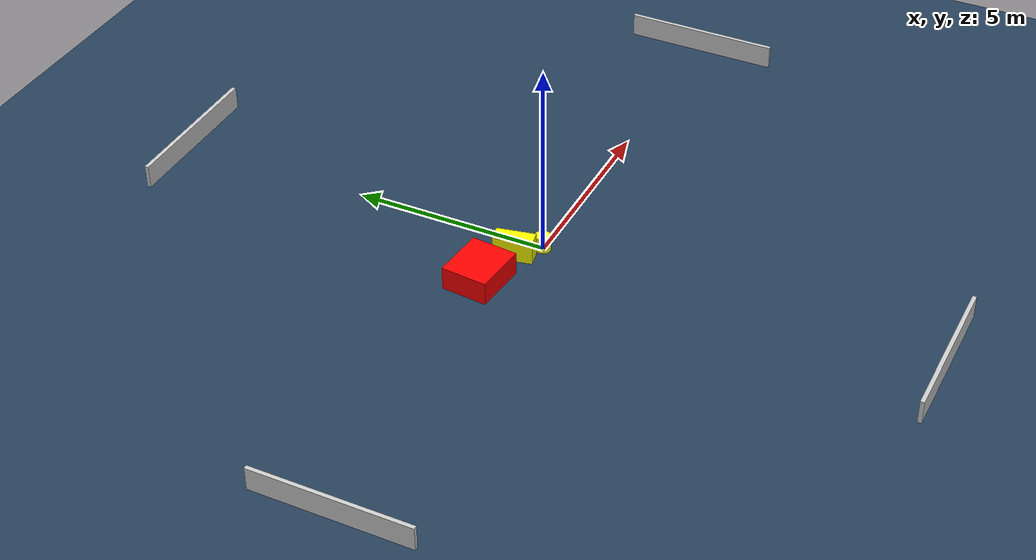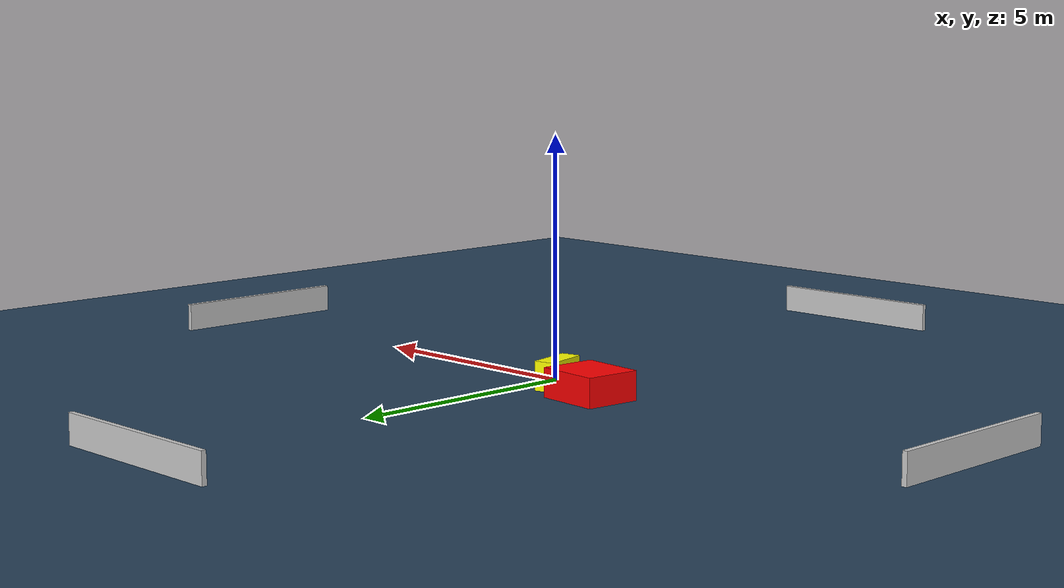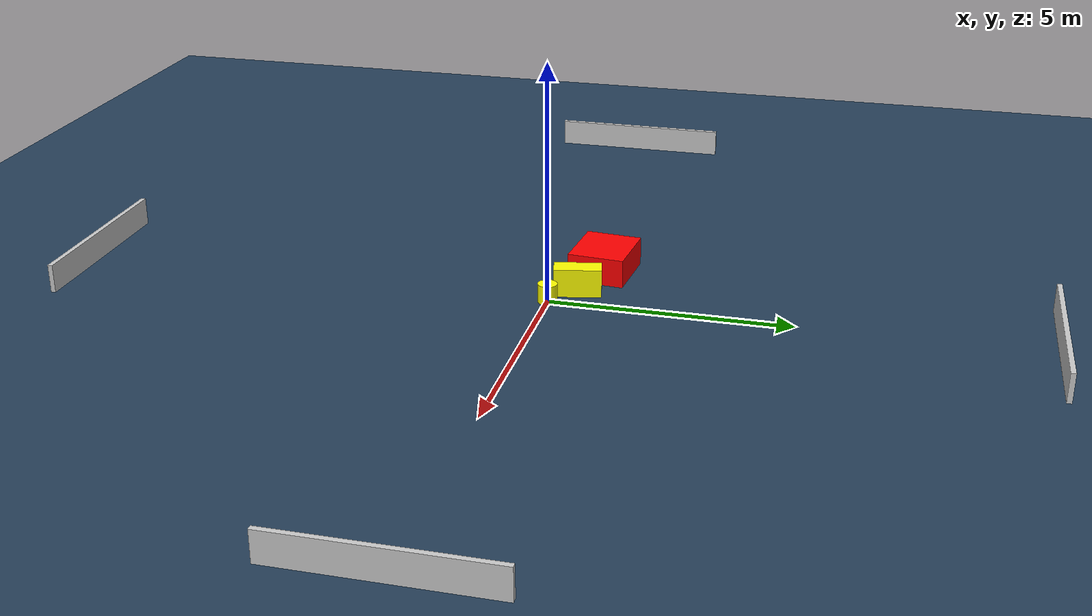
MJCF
<?xml version="1.0" ?>
<mujoco model="generated_environment">
  <option timestep="0.01" integrator="RK4" cone="elliptic"/>
  <default>
    <geom density="1"/>
  </default>
  <asset>
    <texture builtin="gradient" height="3072" name="skybox" rgb1="0.3 0.5 0.7" rgb2="0 0 0" type="skybox" width="512"/>
    <texture builtin="checker" height="300" name="groundplane" rgb1="0.2 0.3 0.4" rgb2="0.1 0.2 0.3" type="2d" width="300"/>
    <material name="groundplane" reflectance="0.2" texrepeat="5 5" texture="groundplane"/>
  </asset>
  <worldbody>
    <light dir="0 0 -1" directional="true" pos="0 0 1.5"/>
    <geom condim="3" friction="0.5 0.005 0.001" material="groundplane" name="floor" pos="0 0 0" size="0 0 0.05" type="plane"/>
    <body name="walls">
      <geom name="wall_1" condim="4" pos="-10.0 0.0 0.3" rgba="0.800000011920929 0.800000011920929 0.800000011920929 1.0" size="0.05 2.0 0.3" type="box"/>
      <geom name="wall_2" condim="4" pos="10.0 0.0 0.3" rgba="0.800000011920929 0.800000011920929 0.800000011920929 1.0" size="0.05 2.0 0.3" type="box"/>
      <geom name="wall_3" condim="4" pos="0.0 -10.0 0.3" rgba="0.800000011920929 0.800000011920929 0.800000011920929 1.0" size="2.0 0.05 0.3" type="box"/>
      <geom name="wall_4" condim="4" pos="0.0 10.0 0.3" rgba="0.800000011920929 0.800000011920929 0.800000011920929 1.0" size="2.0 0.05 0.3" type="box"/>
    </body>
    <body name="robot">
      <joint name="joint_x" type="slide" pos="0 0 0" axis="1 0 0"/>
      <joint name="joint_y" type="slide" pos="0 0 0" axis="0 1 0"/>
      <geom name="robot" type="cylinder" pos="0.0 0.0 0.2" size="0.2 0.2 0.0" mass="5.0" friction="1.0 0.005 0.0001" condim="4" rgba="1.0 1.0 0.0 1.0"/>
    </body>
    <body name="obstacle_1_movable">
      <geom name="obstacle_1_movable" condim="4" pos="-0.5528455901993634 0.49755026787190676 0.3" euler="0 0 11.541351585955058" friction="0.0 0.005 0.001" rgba="1.0 1.0 0.0 1.0" size="0.21005668867543895 0.4925330660689171 0.3" type="box" mass="0.1"/>
      <joint type="free"/>
    </body>
    <body name="obstacle_2_static">
      <geom name="obstacle_2_static" condim="4" pos="-1.7621241993339691 0.8109443574017932 0.3" euler="0 0 84.67914518435809" friction="0.0 0.005 0.001" rgba="1.0 0.0 0.0 1.0" size="0.5933174259730922 0.6838064260392573 0.3" type="box"/>
    </body>
  </worldbody>
  <actuator>
    <motor name="actuator_x" joint="joint_x" gear="1" ctrlrange="-1 1"/>
    <motor name="actuator_y" joint="joint_y" gear="1" ctrlrange="-1 1"/>
  </actuator>
</mujoco>
